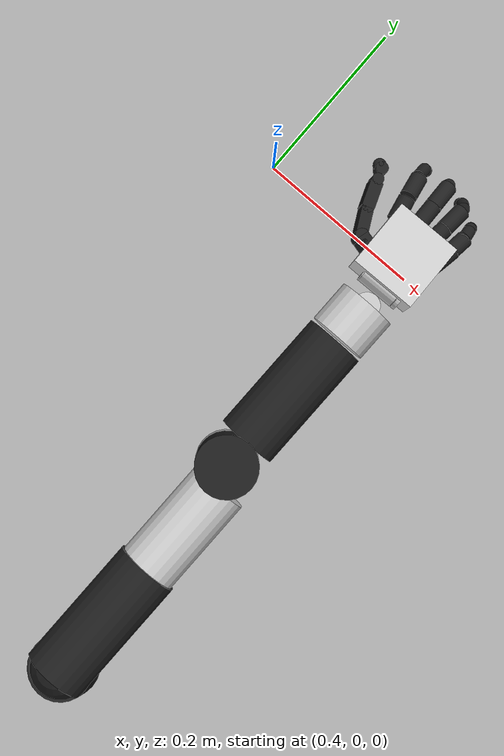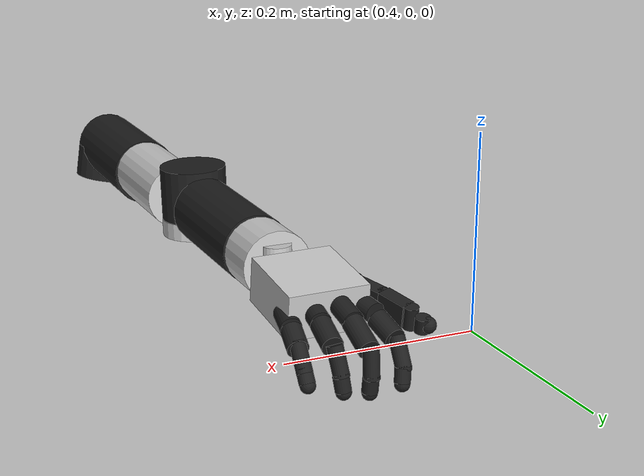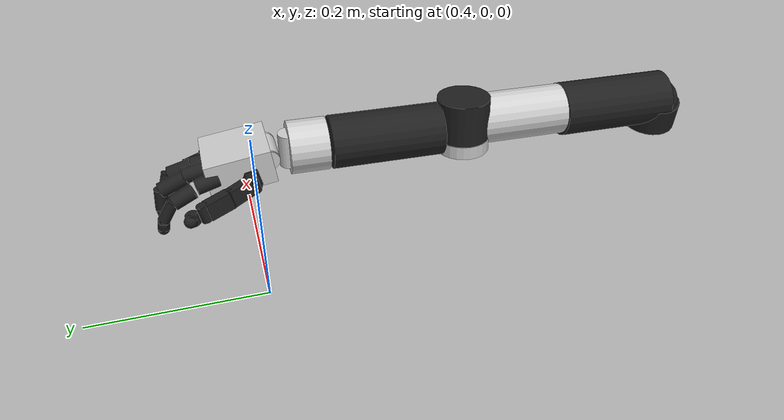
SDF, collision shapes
<sdf version="1.6">
 <model name="mpl_right_arm_grasping">
  <link name="shoulder">
   <pose>0.584765 0.007244 0.057603 -0.012801 0.145459 -1.58337</pose>
   <inertial>
    <pose>0.000536 0.002002 0.03328 0 -0 0</pose>
    <mass>0.0363799</mass>
    <inertia>
     <ixx>3.73005e-05</ixx>
     <ixy>5.68571e-07</ixy>
     <ixz>-7.59543e-07</ixz>
     <iyy>2.60558e-05</iyy>
     <iyz>-9.15512e-07</iyz>
     <izz>3.86186e-05</izz>
    </inertia>
   </inertial>
   <collision name="collision">
    <pose>0 0 0.0345 0 -0 0</pose>
    <geometry><sphere><radius>0.03495</radius></sphere></geometry>
    <surface>
     <contact><ode><kp>100000</kp><kd>10</kd><max_vel>0.1</max_vel><min_depth>0.0015</min_depth></ode></contact>
    </surface>
   </collision>
   <collision name="collision_1">
    <pose>0 0 0.01892 0 -0 0</pose>
    <geometry><cylinder><radius>0.038</radius><length>0.03784</length></cylinder></geometry>
    <surface>
     <contact><ode><kp>100000</kp><kd>10</kd><max_vel>0.1</max_vel><min_depth>0.0015</min_depth></ode></contact>
    </surface>
   </collision>
   <visual name="visual">
    <geometry><mesh><uri>model://mpl_right_arm/meshes/shoulder.stl</uri><scale>1 1 1</scale></mesh></geometry>
    <material><script><name>Gazebo/FlatBlack</name><uri>__default__</uri></script></material>
   </visual>
  </link>
  <link name="humerus">
   <pose>0.585044 0.001658 0.08437 -0.012367 0.14546 -1.58337</pose>
   <inertial>
    <pose>-0.00523 -0.083481 0.010842 0 -0 0</pose>
    <mass>0.0857896</mass>
    <inertia>
     <ixx>0.000259543</ixx>
     <ixy>-4.20463e-06</ixy>
     <ixz>9.18286e-07</ixz>
     <iyy>0.000134353</iyy>
     <iyz>-1.37928e-05</iyz>
     <izz>0.000284981</izz>
    </inertia>
   </inertial>
   <collision name="collision">
    <pose>-0.00164 -0.07024 0.01366 1.5707 -0 0</pose>
    <geometry><cylinder><radius>0.037035</radius><length>0.15849</length></cylinder></geometry>
    <surface>
     <contact><ode><kp>100000</kp><kd>10</kd><max_vel>0.1</max_vel><min_depth>0.0015</min_depth></ode></contact>
    </surface>
   </collision>
   <visual name="visual">
    <geometry><mesh><uri>model://mpl_right_arm/meshes/humerus.stl</uri><scale>1 1 1</scale></mesh></geometry>
    <material><script><name>Gazebo/FlatBlack</name><uri>__default__</uri></script></material>
   </visual>
  </link>
  <link name="elbow">
   <pose>0.435163 0.002889 0.100189 -0.012198 -0.030725 -1.58114</pose>
   <inertial>
    <pose>0.001164 -0.074089 -0.007315 0 -0 0</pose>
    <mass>0.0351897</mass>
    <inertia>
     <ixx>0.000106583</ixx>
     <ixy>-5.90862e-06</ixy>
     <ixz>-2.34382e-06</ixz>
     <iyy>3.29639e-05</iyy>
     <iyz>1.56515e-05</iyz>
     <izz>0.000106705</izz>
    </inertia>
   </inertial>
   <collision name="collision">
    <pose>0 -0.05957 0.00147 1.5707 -0 0</pose>
    <geometry><cylinder><radius>0.03447</radius><length>0.11914</length></cylinder></geometry>
    <surface>
     <contact><ode><kp>100000</kp><kd>10</kd><max_vel>0.1</max_vel><min_depth>0.0015</min_depth></ode></contact>
    </surface>
   </collision>
   <collision name="collision_1">
    <pose>0.00997 -0.1445 -0.0245 0 -0 0</pose>
    <geometry><cylinder><radius>0.036</radius><length>0.018</length></cylinder></geometry>
    <surface>
     <contact><ode><kp>100000</kp><kd>10</kd><max_vel>0.1</max_vel><min_depth>0.0015</min_depth></ode></contact>
    </surface>
   </collision>
   <visual name="visual">
    <geometry><mesh><uri>model://mpl_right_arm/meshes/elbow.stl</uri><scale>1 1 1</scale></mesh></geometry>
    <material>
     <ambient>0.2 0.2 0.2 1</ambient>
     <diffuse>0.8 0.8 0.8 1</diffuse>
     <specular>0.9 0.9 0.9 1</specular>
    </material>
   </visual>
  </link>
  <link name="forearm">
   <pose>0.290477 -0.006024 0.086921 -0.01218 -0.030743 -1.58347</pose>
   <inertial>
    <pose>-0.000589 -0.073314 0.021553 0 -0 0</pose>
    <mass>0.0997005</mass>
    <inertia>
     <ixx>0.0004998</ixx>
     <ixy>-5.83136e-06</ixy>
     <ixz>3.56083e-07</ixz>
     <iyy>0.00010215</iyy>
     <iyz>3.76069e-05</iyz>
     <izz>0.000498862</izz>
    </inertia>
   </inertial>
   <collision name="collision">
    <pose>0 0 0.02855 0 -0 0</pose>
    <geometry><cylinder><radius>0.03567</radius><length>0.0571</length></cylinder></geometry>
    <surface>
     <contact><ode><kp>100000</kp><kd>10</kd><max_vel>0.1</max_vel><min_depth>0.0015</min_depth></ode></contact>
    </surface>
   </collision>
   <collision name="collision_1">
    <pose>0 -0.10745 0.016 1.5707 -0 0</pose>
    <geometry><cylinder><radius>0.035</radius><length>0.148</length></cylinder></geometry>
    <surface>
     <contact><ode><kp>100000</kp><kd>10</kd><max_vel>0.1</max_vel><min_depth>0.0015</min_depth></ode></contact>
    </surface>
   </collision>
   <visual name="visual">
    <geometry><mesh><uri>model://mpl_right_arm/meshes/forearm.stl</uri><scale>1 1 1</scale></mesh></geometry>
    <material><script><name>Gazebo/FlatBlack</name><uri>__default__</uri></script></material>
   </visual>
  </link>
  <link name="wristy">
   <pose>0.105273 -0.003149 0.105172 -0.012174 -0.005504 -1.58379</pose>
   <inertial>
    <pose>-7.1e-05 -0.021779 -0.000286 0 -0 0</pose>
    <mass>0.0272932</mass>
    <inertia>
     <ixx>1.77029e-05</ixx>
     <ixy>7.89061e-09</ixy>
     <ixz>4.33867e-09</ixz>
     <iyy>2.46772e-05</iyy>
     <iyz>1.77331e-07</iyz>
     <izz>1.7112e-05</izz>
    </inertia>
   </inertial>
   <collision name="collision">
    <pose>0 -0.025 0 1.5707 -0 0</pose>
    <geometry><cylinder><radius>0.03447</radius><length>0.05</length></cylinder></geometry>
    <surface>
     <contact><ode><kp>100000</kp><kd>10</kd><max_vel>0.1</max_vel><min_depth>0.0015</min_depth></ode></contact>
    </surface>
   </collision>
   <visual name="visual">
    <geometry><mesh><uri>model://mpl_right_arm/meshes/wristy.stl</uri><scale>1 1 1</scale></mesh></geometry>
    <material>
     <ambient>0.2 0.2 0.2 1</ambient>
     <diffuse>0.8 0.8 0.8 1</diffuse>
     <specular>0.9 0.9 0.9 1</specular>
    </material>
   </visual>
  </link>
  <link name="wristx">
   <pose>0.057662 -0.002484 0.107789 -0.012335 -0.005259 -1.55806</pose>
   <inertial>
    <pose>0.001392 -0.009752 -0.002527 0 -0 0</pose>
    <mass>0.010691</mass>
    <inertia>
     <ixx>3.27995e-06</ixx>
     <ixy>-1.50151e-07</ixy>
     <ixz>5.11904e-09</ixz>
     <iyy>4.22942e-06</iyy>
     <iyz>-4.20007e-08</iyz>
     <izz>5.04229e-06</izz>
    </inertia>
   </inertial>
   <collision name="collision">
    <pose>0 0 -0.00314 0 -0 0</pose>
    <geometry><cylinder><radius>0.01473</radius><length>0.04478</length></cylinder></geometry>
    <surface>
     <contact><ode><kp>100000</kp><kd>10</kd><max_vel>0.1</max_vel><min_depth>0.0015</min_depth></ode></contact>
    </surface>
   </collision>
   <collision name="collision_1">
    <pose>0.0236 -0.02969 -0.0024 0 1.5707 0</pose>
    <geometry><cylinder><radius>0.013175</radius><length>0.005</length></cylinder></geometry>
    <surface>
     <contact><ode><kp>100000</kp><kd>10</kd><max_vel>0.1</max_vel><min_depth>0.0015</min_depth></ode></contact>
    </surface>
   </collision>
   <collision name="collision_2">
    <pose>-0.0236 -0.02969 -0.0024 0 1.5707 0</pose>
    <geometry><cylinder><radius>0.013175</radius><length>0.005</length></cylinder></geometry>
    <surface>
     <contact><ode><kp>100000</kp><kd>10</kd><max_vel>0.1</max_vel><min_depth>0.0015</min_depth></ode></contact>
    </surface>
   </collision>
   <visual name="visual">
    <geometry><mesh><uri>model://mpl_right_arm/meshes/wristx.stl</uri><scale>1 1 1</scale></mesh></geometry>
    <material>
     <ambient>0.2 0.2 0.2 1</ambient>
     <diffuse>0.8 0.8 0.8 1</diffuse>
     <specular>0.9 0.9 0.9 1</specular>
    </material>
   </visual>
  </link>
  <link name="wristz">
   <pose>0.027641 -0.003061 0.106066 0.127694 -0.00499 -1.5579</pose>
   <inertial>
    <pose>0.003682 -0.035876 0.002659 0 -0 0</pose>
    <mass>0.125889</mass>
    <inertia>
     <ixx>8.18077e-05</ixx>
     <ixy>-9.44149e-06</ixy>
     <ixz>3.88366e-06</ixz>
     <iyy>9.81482e-05</iyy>
     <iyz>-4.84151e-08</iyz>
     <izz>0.000131783</izz>
    </inertia>
   </inertial>
   <collision name="collision">
    <pose>0.00207 -0.00047 0.00046 1.5707 0 1.5707</pose>
    <geometry><cylinder><radius>0.01411</radius><length>0.04482</length></cylinder></geometry>
    <surface>
     <contact><ode><kp>100000</kp><kd>10</kd><max_vel>0.1</max_vel><min_depth>0.0015</min_depth></ode></contact>
    </surface>
   </collision>
   <collision name="collision_palm">
    <pose>0.002 -0.03739 0 0 -0 0</pose>
    <geometry><box><size>0.07928 0.08316 0.04402</size></box></geometry>
    <surface>
     <contact><ode><kp>100000</kp><kd>100</kd><max_vel>0.1</max_vel><min_depth>0.0015</min_depth></ode></contact>
    </surface>
   </collision>
   <visual name="visual">
    <geometry><mesh><uri>model://mpl_right_arm/meshes/wristz.stl</uri><scale>1 1 1</scale></mesh></geometry>
    <material>
     <ambient>0.2 0.2 0.2 1</ambient>
     <diffuse>0.8 0.8 0.8 1</diffuse>
     <specular>0.9 0.9 0.9 1</specular>
    </material>
   </visual>
   <visual name="visual_palm">
    <pose>0.025625 0 0 0 -0 0</pose>
    <geometry><mesh><uri>model://mpl_right_arm/meshes/palm.stl</uri><scale>1 1 1</scale></mesh></geometry>
    <material><script><name>Gazebo/FlatBlack</name><uri>__default__</uri></script></material>
   </visual>
  </link>
  <link name="index0">
   <pose>-0.037289 -0.039427 0.098865 0.159732 0.140878 -1.34498</pose>
   <inertial>
    <pose>-0.000143 -0.005485 0.000206 0 -0 0</pose>
    <mass>0.00295579</mass>
    <inertia>
     <ixx>4.22375e-07</ixx>
     <ixy>4.23313e-09</ixy>
     <ixz>5.00708e-10</ixz>
     <iyy>1.94048e-07</iyy>
     <iyz>-4.58697e-09</iyz>
     <izz>4.02188e-07</izz>
    </inertia>
   </inertial>
   <collision name="collision">
    <pose>0 -0.01339 0 1.5707 -0 0</pose>
    <geometry><cylinder><length>0.028</length><radius>0.01</radius></cylinder></geometry>
    <surface>
     <contact><ode><kp>100000</kp><kd>10</kd><max_vel>0.1</max_vel><min_depth>0.0015</min_depth></ode></contact>
    </surface>
   </collision>
   <visual name="visual">
    <geometry><mesh><uri>model://mpl_right_arm/meshes/index0.stl</uri><scale>1 1 1</scale></mesh></geometry>
    <material><script><name>Gazebo/FlatBlack</name><uri>__default__</uri></script></material>
   </visual>
  </link>
  <link name="index1">
   <pose>-0.054685 -0.043079 0.096029 0.381898 0.140987 -1.34489</pose>
   <inertial>
    <pose>0.000406 -0.021313 0.000656 0 -0 0</pose>
    <mass>0.00478235</mass>
    <inertia>
     <ixx>8.18593e-07</ixx>
     <ixy>-1.2874e-09</ixy>
     <ixz>1.78664e-10</ixz>
     <iyy>3.06547e-07</iyy>
     <iyz>-1.18998e-08</iyz>
     <izz>7.95406e-07</izz>
    </inertia>
   </inertial>
   <collision name="collision">
    <pose>0 -0.02782 0 1.5707 -0 0</pose>
    <geometry><cylinder><radius>0.01</radius><length>0.02781</length></cylinder></geometry>
    <surface>
     <contact><ode><kp>100000</kp><kd>10</kd><max_vel>0.1</max_vel><min_depth>0.0015</min_depth></ode></contact>
    </surface>
   </collision>
   <visual name="visual">
    <geometry><mesh><uri>model://mpl_right_arm/meshes/index1.stl</uri><scale>1 1 1</scale></mesh></geometry>
    <material><script><name>Gazebo/FlatBlack</name><uri>__default__</uri></script></material>
   </visual>
  </link>
  <link name="index2">
   <pose>-0.094464 -0.051056 0.080287 1.03949 0.141098 -1.34479</pose>
   <inertial>
    <pose>-0.000841 -0.012689 0.000573 0 -0 0</pose>
    <mass>0.00344764</mass>
    <inertia>
     <ixx>3.63785e-07</ixx>
     <ixy>-6.41791e-09</ixy>
     <ixz>7.97765e-10</ixz>
     <iyy>1.07105e-07</iyy>
     <iyz>2.03273e-08</iyz>
     <izz>3.57435e-07</izz>
    </inertia>
   </inertial>
   <collision name="collision">
    <pose>0 -0.01152 0 1.5707 -0 0</pose>
    <geometry><cylinder><length>0.029</length><radius>0.0075</radius></cylinder></geometry>
    <surface>
     <contact><ode><kp>100000</kp><kd>10</kd><max_vel>0.1</max_vel><min_depth>0.0015</min_depth></ode></contact>
    </surface>
   </collision>
   <collision name="collision_1">
    <pose>0 -0.02502 0 0 -0 0</pose>
    <geometry><sphere><radius>0.0075</radius></sphere></geometry>
    <surface>
     <contact><ode><kp>100000</kp><kd>10</kd><max_vel>0.1</max_vel><min_depth>0.0015</min_depth></ode></contact>
    </surface>
   </collision>
   <visual name="visual">
    <geometry><mesh><uri>model://mpl_right_arm/meshes/index2.stl</uri><scale>1 1 1</scale></mesh></geometry>
    <material><script><name>Gazebo/FlatBlack</name><uri>__default__</uri></script></material>
   </visual>
  </link>
  <link name="index3">
   <pose>-0.107368 -0.050329 0.059465 1.4387 0.14104 -1.34478</pose>
   <inertial>
    <pose>4.3e-05 -0.012532 0.000903 0 -0 0</pose>
    <mass>0.00274415</mass>
    <inertia>
     <ixx>1.09202e-07</ixx>
     <ixy>-3.99165e-12</ixy>
     <ixz>-5.84792e-12</ixz>
     <iyy>7.79728e-08</iyy>
     <iyz>2.77966e-09</iyz>
     <izz>1.19449e-07</izz>
    </inertia>
   </inertial>
   <collision name="collision">
    <pose>0 -0.00688 0.0001 1.5707 -0 0</pose>
    <geometry><cylinder><length>0.01376</length><radius>0.0074</radius></cylinder></geometry>
    <surface>
     <contact><ode><kp>100000</kp><kd>10</kd><max_vel>0.1</max_vel><min_depth>0.0015</min_depth></ode></contact>
    </surface>
   </collision>
   <collision name="collision_1">
    <pose>0 -0.015 0.0001 0 -0 0</pose>
    <geometry><sphere><radius>0.0072</radius></sphere></geometry>
    <surface>
     <contact><ode><kp>100000</kp><kd>10</kd><max_vel>0.1</max_vel><min_depth>0.0015</min_depth></ode></contact>
    </surface>
   </collision>
   <visual name="visual">
    <geometry><mesh><uri>model://mpl_right_arm/meshes/index3.stl</uri><scale>1 1 1</scale></mesh></geometry>
    <material><script><name>Gazebo/FlatBlack</name><uri>__default__</uri></script></material>
   </visual>
  </link>
  <link name="middle0">
   <pose>-0.050148 -0.0169 0.10161 0.215164 -0.004984 -1.55943</pose>
   <inertial>
    <pose>-0.000143 -0.005485 0.000206 0 -0 0</pose>
    <mass>0.00295579</mass>
    <inertia>
     <ixx>4.22374e-07</ixx>
     <ixy>4.23312e-09</ixy>
     <ixz>5.00706e-10</ixz>
     <iyy>1.94048e-07</iyy>
     <iyz>-4.58725e-09</iyz>
     <izz>4.02189e-07</izz>
    </inertia>
   </inertial>
   <collision name="collision">
    <pose>0 -0.01339 0 1.5707 -0 0</pose>
    <geometry><cylinder><length>0.028</length><radius>0.01</radius></cylinder></geometry>
    <surface>
     <contact><ode><kp>100000</kp><kd>10</kd><max_vel>0.1</max_vel><min_depth>0.0015</min_depth></ode></contact>
    </surface>
   </collision>
   <visual name="visual">
    <geometry><mesh><uri>model://mpl_right_arm/meshes/middle0.stl</uri><scale>1 1 1</scale></mesh></geometry>
    <material><script><name>Gazebo/FlatBlack</name><uri>__default__</uri></script></material>
   </visual>
  </link>
  <link name="middle1">
   <pose>-0.067733 -0.017179 0.097769 0.417208 -0.005092 -1.55955</pose>
   <inertial>
    <pose>0.000406 -0.021313 0.000656 0 -0 0</pose>
    <mass>0.00478229</mass>
    <inertia>
     <ixx>8.1859e-07</ixx>
     <ixy>-1.28827e-09</ixy>
     <ixz>1.7867e-10</ixz>
     <iyy>3.06545e-07</iyy>
     <iyz>-1.19001e-08</iyz>
     <izz>7.95403e-07</izz>
    </inertia>
   </inertial>
   <collision name="collision">
    <pose>0 -0.025 0 1.5707 -0 0</pose>
    <geometry><cylinder><radius>0.01</radius><length>0.03459</length></cylinder></geometry>
    <surface>
     <contact><ode><kp>100000</kp><kd>10</kd><max_vel>0.1</max_vel><min_depth>0.0015</min_depth></ode></contact>
    </surface>
   </collision>
   <visual name="visual">
    <geometry><mesh><uri>model://mpl_right_arm/meshes/middle1.stl</uri><scale>1 1 1</scale></mesh></geometry>
    <material><script><name>Gazebo/FlatBlack</name><uri>__default__</uri></script></material>
   </visual>
  </link>
  <link name="middle2">
   <pose>-0.107688 -0.018802 0.080605 1.4876 -0.005084 -1.5596</pose>
   <inertial>
    <pose>-0.000841 -0.012689 0.000573 0 -0 0</pose>
    <mass>0.00344765</mass>
    <inertia>
     <ixx>3.63785e-07</ixx>
     <ixy>-6.41794e-09</ixy>
     <ixz>7.97197e-10</ixz>
     <iyy>1.07106e-07</iyy>
     <iyz>2.03275e-08</iyz>
     <izz>3.57435e-07</izz>
    </inertia>
   </inertial>
   <collision name="collision">
    <pose>0 -0.01152 0 1.5707 -0 0</pose>
    <geometry><cylinder><length>0.029</length><radius>0.0075</radius></cylinder></geometry>
    <surface>
     <contact><ode><kp>100000</kp><kd>10</kd><max_vel>0.1</max_vel><min_depth>0.0015</min_depth></ode></contact>
    </surface>
   </collision>
   <collision name="collision_1">
    <pose>0 -0.02302 0 0 -0 0</pose>
    <geometry><sphere><radius>0.0075</radius></sphere></geometry>
    <surface>
     <contact><ode><kp>100000</kp><kd>10</kd><max_vel>0.1</max_vel><min_depth>0.0015</min_depth></ode></contact>
    </surface>
   </collision>
   <visual name="visual">
    <geometry><mesh><uri>model://mpl_right_arm/meshes/middle2.stl</uri><scale>1 1 1</scale></mesh></geometry>
    <material><script><name>Gazebo/FlatBlack</name><uri>__default__</uri></script></material>
   </visual>
  </link>
  <link name="middle3">
   <pose>-0.109729 -0.018314 0.056187 1.72008 -0.00503 -1.55959</pose>
   <inertial>
    <pose>4.3e-05 -0.012532 0.000903 0 -0 0</pose>
    <mass>0.00274417</mass>
    <inertia>
     <ixx>1.09202e-07</ixx>
     <ixy>-3.78001e-12</ixy>
     <ixz>-5.35395e-12</ixz>
     <iyy>7.79738e-08</iyy>
     <iyz>2.77969e-09</iyz>
     <izz>1.1945e-07</izz>
    </inertia>
   </inertial>
   <collision name="collision">
    <pose>0 -0.00688 0.0001 1.5707 -0 0</pose>
    <geometry><cylinder><length>0.01376</length><radius>0.0074</radius></cylinder></geometry>
    <surface>
     <contact><ode><kp>100000</kp><kd>10</kd><max_vel>0.1</max_vel><min_depth>0.0015</min_depth></ode></contact>
    </surface>
   </collision>
   <collision name="collision_1">
    <pose>0 -0.015 0.0001 0 -0 0</pose>
    <geometry><sphere><radius>0.0072</radius></sphere></geometry>
    <surface>
     <contact><ode><kp>100000</kp><kd>10</kd><max_vel>0.1</max_vel><min_depth>0.0015</min_depth></ode></contact>
    </surface>
   </collision>
   <visual name="visual">
    <geometry><mesh><uri>model://mpl_right_arm/meshes/middle3.stl</uri><scale>1 1 1</scale></mesh></geometry>
    <material><script><name>Gazebo/FlatBlack</name><uri>__default__</uri></script></material>
   </visual>
  </link>
  <link name="pinky0">
   <pose>-0.026981 0.026793 0.093265 0.161844 -0.149858 -1.77637</pose>
   <inertial>
    <pose>-0.000143 -0.005385 0.000206 0 -0 0</pose>
    <mass>0.00295579</mass>
    <inertia>
     <ixx>4.22375e-07</ixx>
     <ixy>4.23309e-09</ixy>
     <ixz>5.0054e-10</ixz>
     <iyy>1.94048e-07</iyy>
     <iyz>-4.58693e-09</iyz>
     <izz>4.02189e-07</izz>
    </inertia>
   </inertial>
   <collision name="collision">
    <pose>0 -0.01339 0 1.5707 -0 0</pose>
    <geometry><cylinder><length>0.028</length><radius>0.01</radius></cylinder></geometry>
    <surface>
     <contact><ode><kp>100000</kp><kd>10</kd><max_vel>0.1</max_vel><min_depth>0.0015</min_depth></ode></contact>
    </surface>
   </collision>
   <visual name="visual">
    <geometry><mesh><uri>model://mpl_right_arm/meshes/pinky0.stl</uri><scale>1 1 1</scale></mesh></geometry>
    <material><script><name>Gazebo/FlatBlack</name><uri>__default__</uri></script></material>
   </visual>
  </link>
  <link name="pinky1">
   <pose>-0.044374 0.02992 0.090422 0.411933 -0.150007 -1.7764</pose>
   <inertial>
    <pose>0.000459 -0.016048 0.000925 0 -0 0</pose>
    <mass>0.0034099</mass>
    <inertia>
     <ixx>4.03282e-07</ixx>
     <ixy>-1.80186e-09</ixy>
     <ixz>-1.42049e-09</ixz>
     <iyy>2.20449e-07</iyy>
     <iyz>-9.60174e-09</iyz>
     <izz>3.83588e-07</izz>
    </inertia>
   </inertial>
   <collision name="collision">
    <pose>0 -0.02082 0 1.5707 -0 0</pose>
    <geometry><cylinder><radius>0.01</radius><length>0.02381</length></cylinder></geometry>
    <surface>
     <contact><ode><kp>100000</kp><kd>10</kd><max_vel>0.1</max_vel><min_depth>0.0015</min_depth></ode></contact>
    </surface>
   </collision>
   <visual name="visual">
    <geometry><mesh><uri>model://mpl_right_arm/meshes/pinky1.stl</uri><scale>1 1 1</scale></mesh></geometry>
    <material><script><name>Gazebo/FlatBlack</name><uri>__default__</uri></script></material>
   </visual>
  </link>
  <link name="pinky2">
   <pose>-0.074678 0.03371 0.077897 1.00604 -0.150166 -1.77645</pose>
   <inertial>
    <pose>-0.000271 -0.009146 0.000738 0 -0 0</pose>
    <mass>0.00250622</mass>
    <inertia>
     <ixx>1.78939e-07</ixx>
     <ixy>-3.88097e-09</ixy>
     <ixz>3.24897e-10</ixz>
     <iyy>7.59883e-08</iyy>
     <iyz>1.17825e-08</iyz>
     <izz>1.74551e-07</izz>
    </inertia>
   </inertial>
   <collision name="collision">
    <pose>0 -0.0076 0 1.5707 -0 0</pose>
    <geometry><cylinder><length>0.029</length><radius>0.0075</radius></cylinder></geometry>
    <surface>
     <contact><ode><kp>100000</kp><kd>10</kd><max_vel>0.1</max_vel><min_depth>0.0015</min_depth></ode></contact>
    </surface>
   </collision>
   <visual name="visual">
    <geometry><mesh><uri>model://mpl_right_arm/meshes/pinky2.stl</uri><scale>1 1 1</scale></mesh></geometry>
    <material><script><name>Gazebo/FlatBlack</name><uri>__default__</uri></script></material>
   </visual>
  </link>
  <link name="pinky3">
   <pose>-0.084288 0.033504 0.063273 1.02091 -0.150144 -1.77653</pose>
   <inertial>
    <pose>3.9e-05 -0.012505 0.000912 0 -0 0</pose>
    <mass>0.00273265</mass>
    <inertia>
     <ixx>1.08629e-07</ixx>
     <ixy>2.84178e-11</ixy>
     <ixz>1.88869e-11</ixz>
     <iyy>7.78965e-08</iyy>
     <iyz>2.64344e-09</iyz>
     <izz>1.18971e-07</izz>
    </inertia>
   </inertial>
   <collision name="collision">
    <pose>0 -0.00688 0.0001 1.5707 -0 0</pose>
    <geometry><cylinder><length>0.01376</length><radius>0.0074</radius></cylinder></geometry>
    <surface>
     <contact><ode><kp>100000</kp><kd>10</kd><max_vel>0.1</max_vel><min_depth>0.0015</min_depth></ode></contact>
    </surface>
   </collision>
   <collision name="collision_1">
    <pose>0 -0.015 0.0001 0 -0 0</pose>
    <geometry><sphere><radius>0.0072</radius></sphere></geometry>
    <surface>
     <contact><ode><kp>100000</kp><kd>10</kd><max_vel>0.1</max_vel><min_depth>0.0015</min_depth></ode></contact>
    </surface>
   </collision>
   <visual name="visual">
    <geometry><mesh><uri>model://mpl_right_arm/meshes/pinky3.stl</uri><scale>1 1 1</scale></mesh></geometry>
    <material><script><name>Gazebo/FlatBlack</name><uri>__default__</uri></script></material>
   </visual>
  </link>
  <link name="ring0">
   <pose>-0.03883 0.005914 0.099022 0.151462 -0.160607 -1.70847</pose>
   <inertial>
    <pose>-0.000143 -0.005485 0.000206 0 -0 0</pose>
    <mass>0.00295579</mass>
    <inertia>
     <ixx>4.22375e-07</ixx>
     <ixy>4.23309e-09</ixy>
     <ixz>5.00535e-10</ixz>
     <iyy>1.94048e-07</iyy>
     <iyz>-4.58693e-09</iyz>
     <izz>4.02189e-07</izz>
    </inertia>
   </inertial>
   <collision name="collision">
    <pose>0 -0.01339 0 1.5707 -0 0</pose>
    <geometry><cylinder><length>0.028</length><radius>0.01</radius></cylinder></geometry>
    <surface>
     <contact><ode><kp>100000</kp><kd>10</kd><max_vel>0.1</max_vel><min_depth>0.0015</min_depth></ode></contact>
    </surface>
   </collision>
   <visual name="visual">
    <geometry><mesh><uri>model://mpl_right_arm/meshes/ring0.stl</uri><scale>1 1 1</scale></mesh></geometry>
    <material><script><name>Gazebo/FlatBlack</name><uri>__default__</uri></script></material>
   </visual>
  </link>
  <link name="ring1">
   <pose>-0.056524 0.007869 0.096351 0.310356 -0.160758 -1.70862</pose>
   <inertial>
    <pose>0.000406 -0.021313 0.000656 0 -0 0</pose>
    <mass>0.00478232</mass>
    <inertia>
     <ixx>8.18592e-07</ixx>
     <ixy>-1.28783e-09</ixy>
     <ixz>1.78814e-10</ixz>
     <iyy>3.06546e-07</iyy>
     <iyz>-1.19e-08</iyz>
     <izz>7.95405e-07</izz>
    </inertia>
   </inertial>
   <collision name="collision">
    <pose>0 -0.02505 0 1.5707 -0 0</pose>
    <geometry><cylinder><radius>0.01</radius><length>0.03095</length></cylinder></geometry>
    <surface>
     <contact><ode><kp>100000</kp><kd>10</kd><max_vel>0.1</max_vel><min_depth>0.0015</min_depth></ode></contact>
    </surface>
   </collision>
   <visual name="visual">
    <geometry><mesh><uri>model://mpl_right_arm/meshes/ring1.stl</uri><scale>1 1 1</scale></mesh></geometry>
    <material><script><name>Gazebo/FlatBlack</name><uri>__default__</uri></script></material>
   </visual>
  </link>
  <link name="ring2">
   <pose>-0.098133 0.010489 0.083881 1.30048 -0.160795 -1.70871</pose>
   <inertial>
    <pose>-0.000842 -0.012689 0.000573 0 -0 0</pose>
    <mass>0.00344767</mass>
    <inertia>
     <ixx>3.63785e-07</ixx>
     <ixy>-6.41744e-09</ixy>
     <ixz>7.98585e-10</ixz>
     <iyy>1.07107e-07</iyy>
     <iyz>2.03271e-08</iyz>
     <izz>3.57437e-07</izz>
    </inertia>
   </inertial>
   <collision name="collision">
    <pose>0 -0.01152 0 1.5707 -0 0</pose>
    <geometry><cylinder><length>0.029</length><radius>0.0075</radius></cylinder></geometry>
    <surface>
     <contact><ode><kp>100000</kp><kd>10</kd><max_vel>0.1</max_vel><min_depth>0.0015</min_depth></ode></contact>
    </surface>
   </collision>
   <collision name="collision_1">
    <pose>0 -0.02302 0 0 -0 0</pose>
    <geometry><sphere><radius>0.0075</radius></sphere></geometry>
    <surface>
     <contact><ode><kp>100000</kp><kd>10</kd><max_vel>0.1</max_vel><min_depth>0.0015</min_depth></ode></contact>
    </surface>
   </collision>
   <visual name="visual">
    <geometry><mesh><uri>model://mpl_right_arm/meshes/ring2.stl</uri><scale>1 1 1</scale></mesh></geometry>
    <material><script><name>Gazebo/FlatBlack</name><uri>__default__</uri></script></material>
   </visual>
  </link>
  <link name="ring3">
   <pose>-0.105046 0.008264 0.060474 1.50094 -0.160723 -1.70873</pose>
   <inertial>
    <pose>4.3e-05 -0.012532 0.000903 0 -0 0</pose>
    <mass>0.00274416</mass>
    <inertia>
     <ixx>1.09202e-07</ixx>
     <ixy>-3.99392e-12</ixy>
     <ixz>-5.71287e-12</ixz>
     <iyy>7.79732e-08</iyy>
     <iyz>2.77976e-09</iyz>
     <izz>1.1945e-07</izz>
    </inertia>
   </inertial>
   <collision name="collision">
    <pose>0 -0.00688 0.0001 1.5707 -0 0</pose>
    <geometry><cylinder><length>0.01376</length><radius>0.0074</radius></cylinder></geometry>
    <surface>
     <contact><ode><kp>100000</kp><kd>10</kd><max_vel>0.1</max_vel><min_depth>0.0015</min_depth></ode></contact>
    </surface>
   </collision>
   <collision name="collision_1">
    <pose>0 -0.015 0.0001 0 -0 0</pose>
    <geometry><sphere><radius>0.0072</radius></sphere></geometry>
    <surface>
     <contact><ode><kp>100000</kp><kd>10</kd><max_vel>0.1</max_vel><min_depth>0.0015</min_depth></ode></contact>
    </surface>
   </collision>
   <visual name="visual">
    <geometry><mesh><uri>model://mpl_right_arm/meshes/ring3.stl</uri><scale>1 1 1</scale></mesh></geometry>
    <material><script><name>Gazebo/FlatBlack</name><uri>__default__</uri></script></material>
   </visual>
  </link>
  <link name="thumb0">
   <pose>0.008836 -0.037353 0.0936 0.212705 0.019993 -1.82037</pose>
   <inertial>
    <pose>0.008633 -0.000157 -0.000946 0 -0 0</pose>
    <mass>0.00336696</mass>
    <inertia>
     <ixx>2.44266e-07</ixx>
     <ixy>-1.56849e-08</ixy>
     <ixz>4.05807e-08</ixz>
     <iyy>4.49559e-07</iyy>
     <iyz>3.27736e-09</iyz>
     <izz>4.40718e-07</izz>
    </inertia>
   </inertial>
   <collision name="collision">
    <pose>0.02 -0.001 0.0015 0 -0 0</pose>
    <geometry><cylinder><length>0.023</length><radius>0.008221</radius></cylinder></geometry>
    <surface>
     <contact><ode><kp>100000</kp><kd>10</kd><max_vel>0.1</max_vel><min_depth>0.0015</min_depth></ode></contact>
    </surface>
   </collision>
   <collision name="collision_1">
    <pose>0.01 -0.001 0.0015 0 -0 0</pose>
    <geometry><box><size>0.0202 0.0155 0.023</size></box></geometry>
    <surface>
     <contact><ode><kp>100000</kp><kd>10</kd><max_vel>0.1</max_vel><min_depth>0.0015</min_depth></ode></contact>
    </surface>
   </collision>
   <visual name="visual">
    <geometry><mesh><uri>model://mpl_right_arm/meshes/thumb0.stl</uri><scale>1 1 1</scale></mesh></geometry>
    <material><script><name>Gazebo/FlatBlack</name><uri>__default__</uri></script></material>
   </visual>
  </link>
  <link name="thumb1">
   <pose>0.00257 -0.057365 0.094434 0.124389 0.172045 -2.67086</pose>
   <inertial>
    <pose>0.019024 0.000361 -0.000187 0 -0 0</pose>
    <mass>0.00596213</mass>
    <inertia>
     <ixx>5.36423e-07</ixx>
     <ixy>-7.9696e-09</ixy>
     <ixz>-3.66761e-08</ixz>
     <iyy>9.87852e-07</iyy>
     <iyz>-1.23551e-09</iyz>
     <izz>9.4184e-07</izz>
    </inertia>
   </inertial>
   <collision name="collision">
    <pose>-0.00056 0 -0.00025 0 -0 0</pose>
    <geometry><cylinder><length>0.0188</length><radius>0.00688</radius></cylinder></geometry>
    <surface>
     <contact><ode><kp>100000</kp><kd>10</kd><max_vel>0.1</max_vel><min_depth>0.0015</min_depth></ode></contact>
    </surface>
   </collision>
   <collision name="collision_1">
    <pose>0.03381 0 0 0 -0 0</pose>
    <geometry><cylinder><length>0.02176</length><radius>0.00688</radius></cylinder></geometry>
    <surface>
     <contact><ode><kp>100000</kp><kd>10</kd><max_vel>0.1</max_vel><min_depth>0.0015</min_depth></ode></contact>
    </surface>
   </collision>
   <collision name="collision_2">
    <pose>0.01613 0 0 0 -0 0</pose>
    <geometry><box><size>0.03273 0.01376 0.02176</size></box></geometry>
    <surface>
     <contact><ode><kp>100000</kp><kd>10</kd><max_vel>0.1</max_vel><min_depth>0.0015</min_depth></ode></contact>
    </surface>
   </collision>
   <visual name="visual">
    <geometry><mesh><uri>model://mpl_right_arm/meshes/thumb1.stl</uri><scale>1 1 1</scale></mesh></geometry>
    <material><script><name>Gazebo/FlatBlack</name><uri>__default__</uri></script></material>
   </visual>
  </link>
  <link name="thumb2">
   <pose>-0.026697 -0.072368 0.08798 0.103611 0.184809 -2.78701</pose>
   <inertial>
    <pose>0.018897 0.000376 0.000654 0 -0 0</pose>
    <mass>0.00599792</mass>
    <inertia>
     <ixx>5.17385e-07</ixx>
     <ixy>-1.08936e-08</ixy>
     <ixz>-3.49348e-08</ixz>
     <iyy>9.9639e-07</iyy>
     <iyz>5.15558e-10</iyz>
     <izz>9.6228e-07</izz>
    </inertia>
   </inertial>
   <collision name="collision">
    <pose>0.03415 0 0.001 0 -0 0</pose>
    <geometry><cylinder><radius>0.00679</radius><length>0.02236</length></cylinder></geometry>
    <surface>
     <contact><ode><kp>100000</kp><kd>10</kd><max_vel>0.1</max_vel><min_depth>0.0015</min_depth></ode></contact>
    </surface>
   </collision>
   <collision name="collision_1">
    <pose>0.01493 0 0.001 0 -0 0</pose>
    <geometry><box><size>0.03095 0.015 0.02236</size></box></geometry>
    <surface>
     <contact><ode><kp>100000</kp><kd>10</kd><max_vel>0.1</max_vel><min_depth>0.0015</min_depth></ode></contact>
    </surface>
   </collision>
   <visual name="visual">
    <geometry><mesh><uri>model://mpl_right_arm/meshes/thumb2.stl</uri><scale>1 1 1</scale></mesh></geometry>
    <material><script><name>Gazebo/FlatBlack</name><uri>__default__</uri></script></material>
   </visual>
  </link>
  <link name="thumb3">
   <pose>-0.057827 -0.083791 0.082886 0.123949 0.171765 -2.67222</pose>
   <inertial>
    <pose>0.012344 -0.001455 0 0 -0 0</pose>
    <mass>0.00274415</mass>
    <inertia>
     <ixx>1.73184e-07</ixx>
     <ixy>0</ixy>
     <ixz>0</ixz>
     <iyy>3.66499e-07</iyy>
     <iyz>2.77966e-09</iyz>
     <izz>3.59291e-07</izz>
    </inertia>
   </inertial>
   <collision name="collision">
    <pose>0.01507 -0.00219 0.0001 0 -0 0</pose>
    <geometry><cylinder><length>0.01476</length><radius>0.0074</radius></cylinder></geometry>
    <surface>
     <contact><ode><kp>100000</kp><kd>10</kd><max_vel>0.1</max_vel><min_depth>0.0015</min_depth></ode></contact>
    </surface>
   </collision>
   <collision name="collision_1">
    <pose>0.0195 0 0 0 -0 0</pose>
    <geometry><sphere><radius>0.008</radius></sphere></geometry>
    <surface>
     <contact><ode><kp>100000</kp><kd>10</kd><max_vel>0.1</max_vel><min_depth>0.0015</min_depth></ode></contact>
    </surface>
   </collision>
   <visual name="visual">
    <geometry><mesh><uri>model://mpl_right_arm/meshes/thumb3.stl</uri><scale>1 1 1</scale></mesh></geometry>
    <material><script><name>Gazebo/FlatBlack</name><uri>__default__</uri></script></material>
   </visual>
  </link>
  <joint name="humerus" type="revolute">
   <child>humerus</child>
   <parent>shoulder</parent>
   <axis>
    <xyz>0.999933 -0.011537 0</xyz>
    <limit><lower>-3.14</lower><upper>0.345</upper><effort>10000</effort><velocity>0.5</velocity></limit>
    <dynamics>
     <damping>5</damping>
     <spring_reference>0</spring_reference>
     <spring_stiffness>0</spring_stiffness>
    </dynamics>
    <use_parent_model_frame>1</use_parent_model_frame>
   </axis>
   <physics>
    <provide_feedback>1</provide_feedback>
    <ode>
     <implicit_spring_damper>1</implicit_spring_damper>
     <cfm_damping>1</cfm_damping>
     <limit><cfm>0.01</cfm><erp>0</erp></limit>
    </ode>
   </physics>
  </joint>
  <joint name="elbow" type="revolute">
   <child>elbow</child>
   <parent>humerus</parent>
   <axis>
    <xyz>0.011537 0.999933 0</xyz>
    <limit><lower>-0.697</lower><upper>1.57</upper><effort>10000</effort><velocity>0.5</velocity></limit>
    <dynamics>
     <damping>5</damping>
     <spring_reference>0</spring_reference>
     <spring_stiffness>0</spring_stiffness>
    </dynamics>
    <use_parent_model_frame>1</use_parent_model_frame>
   </axis>
   <physics>
    <provide_feedback>1</provide_feedback>
    <ode>
     <implicit_spring_damper>1</implicit_spring_damper>
     <cfm_damping>1</cfm_damping>
     <limit><cfm>0.01</cfm><erp>0</erp></limit>
    </ode>
   </physics>
  </joint>
  <joint name="forearm" type="revolute">
   <child>forearm</child>
   <parent>elbow</parent>
   <axis>
    <xyz>0 0 1</xyz>
    <limit><lower>0</lower><upper>2.61</upper><effort>10000</effort><velocity>0.5</velocity></limit>
    <dynamics>
     <damping>5</damping>
     <spring_reference>0</spring_reference>
     <spring_stiffness>0</spring_stiffness>
    </dynamics>
    <use_parent_model_frame>1</use_parent_model_frame>
   </axis>
   <physics>
    <provide_feedback>1</provide_feedback>
    <ode>
     <implicit_spring_damper>1</implicit_spring_damper>
     <cfm_damping>1</cfm_damping>
     <limit><cfm>0.01</cfm><erp>0</erp></limit>
    </ode>
   </physics>
  </joint>
  <joint name="wristy" type="revolute">
   <child>wristy</child>
   <parent>forearm</parent>
   <axis>
    <xyz>0.011537 0.999933 0</xyz>
    <limit><lower>-1.57</lower><upper>1.57</upper><effort>10000</effort><velocity>0.5</velocity></limit>
    <dynamics>
     <damping>5</damping>
     <spring_reference>0</spring_reference>
     <spring_stiffness>0</spring_stiffness>
    </dynamics>
    <use_parent_model_frame>1</use_parent_model_frame>
   </axis>
   <physics>
    <provide_feedback>1</provide_feedback>
    <ode>
     <implicit_spring_damper>1</implicit_spring_damper>
     <cfm_damping>1</cfm_damping>
     <limit><cfm>0</cfm><erp>0.2</erp></limit>
    </ode>
   </physics>
  </joint>
  <joint name="wristx" type="revolute">
   <child>wristx</child>
   <parent>wristy</parent>
   <axis>
    <xyz>0 0 -1</xyz>
    <limit><lower>-0.261</lower><upper>0.785</upper><effort>10000</effort><velocity>0.5</velocity></limit>
    <dynamics>
     <damping>5</damping>
     <spring_reference>0</spring_reference>
     <spring_stiffness>0</spring_stiffness>
    </dynamics>
    <use_parent_model_frame>1</use_parent_model_frame>
   </axis>
   <physics>
    <provide_feedback>1</provide_feedback>
    <ode>
     <implicit_spring_damper>1</implicit_spring_damper>
     <cfm_damping>1</cfm_damping>
     <limit><cfm>0</cfm><erp>0.2</erp></limit>
    </ode>
   </physics>
  </joint>
  <joint name="wristz" type="revolute">
   <child>wristz</child>
   <parent>wristx</parent>
   <axis>
    <xyz>0.999933 -0.011537 0</xyz>
    <limit><lower>-1.04</lower><upper>1.04</upper><effort>10000</effort><velocity>0.5</velocity></limit>
    <dynamics>
     <damping>5</damping>
     <spring_reference>0</spring_reference>
     <spring_stiffness>0</spring_stiffness>
    </dynamics>
    <use_parent_model_frame>1</use_parent_model_frame>
   </axis>
   <physics>
    <provide_feedback>1</provide_feedback>
    <ode>
     <implicit_spring_damper>1</implicit_spring_damper>
     <cfm_damping>1</cfm_damping>
     <limit><cfm>0</cfm><erp>0.2</erp></limit>
    </ode>
   </physics>
  </joint>
  <joint name="index0" type="revolute">
   <child>index0</child>
   <parent>wristz</parent>
   <axis>
    <xyz>-0.173637 0.002003 -0.984808</xyz>
    <limit><lower>-0.345</lower><upper>0</upper><effort>10000</effort><velocity>0.5</velocity></limit>
    <dynamics>
     <damping>0.8</damping>
     <spring_reference>0</spring_reference>
     <spring_stiffness>0</spring_stiffness>
    </dynamics>
    <use_parent_model_frame>1</use_parent_model_frame>
   </axis>
   <physics>
    <provide_feedback>1</provide_feedback>
    <ode>
     <implicit_spring_damper>1</implicit_spring_damper>
     <cfm_damping>1</cfm_damping>
     <limit><cfm>0</cfm><erp>0.2</erp></limit>
    </ode>
   </physics>
  </joint>
  <joint name="index1" type="revolute">
   <child>index1</child>
   <parent>index0</parent>
   <axis>
    <xyz>0.984742 -0.011362 -0.173648</xyz>
    <limit><lower>-0.785</lower><upper>1.57</upper><effort>10000</effort><velocity>0.5</velocity></limit>
    <dynamics>
     <damping>0.8</damping>
     <spring_reference>0</spring_reference>
     <spring_stiffness>0</spring_stiffness>
    </dynamics>
    <use_parent_model_frame>1</use_parent_model_frame>
   </axis>
   <physics>
    <provide_feedback>1</provide_feedback>
    <ode>
     <implicit_spring_damper>1</implicit_spring_damper>
     <cfm_damping>1</cfm_damping>
     <limit><cfm>0</cfm><erp>0.2</erp></limit>
    </ode>
   </physics>
  </joint>
  <joint name="index2" type="revolute">
   <child>index2</child>
   <parent>index1</parent>
   <axis>
    <xyz>0.984742 -0.011362 -0.173648</xyz>
    <limit><lower>0</lower><upper>1.72</upper><effort>10000</effort><velocity>0.5</velocity></limit>
    <dynamics>
     <damping>0.8</damping>
     <spring_reference>0</spring_reference>
     <spring_stiffness>0</spring_stiffness>
    </dynamics>
    <use_parent_model_frame>1</use_parent_model_frame>
   </axis>
   <physics>
    <provide_feedback>1</provide_feedback>
    <ode>
     <implicit_spring_damper>1</implicit_spring_damper>
     <cfm_damping>1</cfm_damping>
     <limit><cfm>0</cfm><erp>0.2</erp></limit>
    </ode>
   </physics>
  </joint>
  <joint name="index3" type="revolute">
   <child>index3</child>
   <parent>index2</parent>
   <axis>
    <xyz>0.984742 -0.011362 -0.173648</xyz>
    <limit><lower>0</lower><upper>1.38</upper><effort>10000</effort><velocity>0.5</velocity></limit>
    <dynamics>
     <damping>0.8</damping>
     <spring_reference>0</spring_reference>
     <spring_stiffness>0</spring_stiffness>
    </dynamics>
    <use_parent_model_frame>1</use_parent_model_frame>
   </axis>
   <physics>
    <provide_feedback>1</provide_feedback>
    <ode>
     <implicit_spring_damper>1</implicit_spring_damper>
     <cfm_damping>1</cfm_damping>
     <limit><cfm>0</cfm><erp>0.2</erp></limit>
    </ode>
   </physics>
  </joint>
  <joint name="middle0" type="revolute">
   <child>middle0</child>
   <parent>wristz</parent>
   <axis>
    <xyz>0.001006 0.08715 -0.996195</xyz>
    <limit><lower>0</lower><upper>0</upper><effort>10000</effort><velocity>0.5</velocity></limit>
    <dynamics>
     <damping>0.8</damping>
     <spring_reference>0</spring_reference>
     <spring_stiffness>0</spring_stiffness>
    </dynamics>
    <use_parent_model_frame>1</use_parent_model_frame>
   </axis>
   <physics>
    <provide_feedback>1</provide_feedback>
    <ode>
     <implicit_spring_damper>1</implicit_spring_damper>
     <cfm_damping>1</cfm_damping>
     <limit><cfm>0</cfm><erp>0.2</erp></limit>
    </ode>
   </physics>
  </joint>
  <joint name="middle1" type="revolute">
   <child>middle1</child>
   <parent>middle0</parent>
   <axis>
    <xyz>0.999933 -0.011537 0</xyz>
    <limit><lower>-0.785</lower><upper>1.57</upper><effort>10000</effort><velocity>0.5</velocity></limit>
    <dynamics>
     <damping>0.8</damping>
     <spring_reference>0</spring_reference>
     <spring_stiffness>0</spring_stiffness>
    </dynamics>
    <use_parent_model_frame>1</use_parent_model_frame>
   </axis>
   <physics>
    <provide_feedback>1</provide_feedback>
    <ode>
     <implicit_spring_damper>1</implicit_spring_damper>
     <cfm_damping>1</cfm_damping>
     <limit><cfm>0</cfm><erp>0.2</erp></limit>
    </ode>
   </physics>
  </joint>
  <joint name="middle2" type="revolute">
   <child>middle2</child>
   <parent>middle1</parent>
   <axis>
    <xyz>0.999933 -0.011537 0</xyz>
    <limit><lower>0</lower><upper>1.73</upper><effort>10000</effort><velocity>0.5</velocity></limit>
    <dynamics>
     <damping>0.8</damping>
     <spring_reference>0</spring_reference>
     <spring_stiffness>0</spring_stiffness>
    </dynamics>
    <use_parent_model_frame>1</use_parent_model_frame>
   </axis>
   <physics>
    <provide_feedback>1</provide_feedback>
    <ode>
     <implicit_spring_damper>1</implicit_spring_damper>
     <cfm_damping>1</cfm_damping>
     <limit><cfm>0</cfm><erp>0.2</erp></limit>
    </ode>
   </physics>
  </joint>
  <joint name="middle3" type="revolute">
   <child>middle3</child>
   <parent>middle2</parent>
   <axis>
    <xyz>0.999933 -0.011537 0</xyz>
    <limit><lower>0</lower><upper>1.38</upper><effort>10000</effort><velocity>0.5</velocity></limit>
    <dynamics>
     <damping>0.8</damping>
     <spring_reference>0</spring_reference>
     <spring_stiffness>0</spring_stiffness>
    </dynamics>
    <use_parent_model_frame>1</use_parent_model_frame>
   </axis>
   <physics>
    <provide_feedback>1</provide_feedback>
    <ode>
     <implicit_spring_damper>1</implicit_spring_damper>
     <cfm_damping>1</cfm_damping>
     <limit><cfm>0</cfm><erp>0.2</erp></limit>
    </ode>
   </physics>
  </joint>
  <joint name="pinky0" type="revolute">
   <child>pinky0</child>
   <parent>wristz</parent>
   <axis>
    <xyz>0.173637 -0.002003 -0.984808</xyz>
    <limit><lower>0</lower><upper>0.345</upper><effort>10000</effort><velocity>0.5</velocity></limit>
    <dynamics>
     <damping>0.8</damping>
     <spring_reference>0</spring_reference>
     <spring_stiffness>0</spring_stiffness>
    </dynamics>
    <use_parent_model_frame>1</use_parent_model_frame>
   </axis>
   <physics>
    <provide_feedback>1</provide_feedback>
    <ode>
     <implicit_spring_damper>1</implicit_spring_damper>
     <cfm_damping>1</cfm_damping>
     <limit><cfm>0</cfm><erp>0.2</erp></limit>
    </ode>
   </physics>
  </joint>
  <joint name="pinky1" type="revolute">
   <child>pinky1</child>
   <parent>pinky0</parent>
   <axis>
    <xyz>0.984742 -0.011362 0.173648</xyz>
    <limit><lower>-0.785</lower><upper>1.57</upper><effort>10000</effort><velocity>0.5</velocity></limit>
    <dynamics>
     <damping>0.8</damping>
     <spring_reference>0</spring_reference>
     <spring_stiffness>0</spring_stiffness>
    </dynamics>
    <use_parent_model_frame>1</use_parent_model_frame>
   </axis>
   <physics>
    <provide_feedback>1</provide_feedback>
    <ode>
     <implicit_spring_damper>1</implicit_spring_damper>
     <cfm_damping>1</cfm_damping>
     <limit><cfm>0</cfm><erp>0.2</erp></limit>
    </ode>
   </physics>
  </joint>
  <joint name="pinky2" type="revolute">
   <child>pinky2</child>
   <parent>pinky1</parent>
   <axis>
    <xyz>0.984742 -0.011362 0.173648</xyz>
    <limit><lower>0</lower><upper>1.72</upper><effort>10000</effort><velocity>0.5</velocity></limit>
    <dynamics>
     <damping>0.8</damping>
     <spring_reference>0</spring_reference>
     <spring_stiffness>0</spring_stiffness>
    </dynamics>
    <use_parent_model_frame>1</use_parent_model_frame>
   </axis>
   <physics>
    <provide_feedback>1</provide_feedback>
    <ode>
     <implicit_spring_damper>1</implicit_spring_damper>
     <cfm_damping>1</cfm_damping>
     <limit><cfm>0</cfm><erp>0.2</erp></limit>
    </ode>
   </physics>
  </joint>
  <joint name="pinky3" type="revolute">
   <child>pinky3</child>
   <parent>pinky2</parent>
   <axis>
    <xyz>0.984742 -0.011362 0.173648</xyz>
    <limit><lower>0</lower><upper>1.38</upper><effort>10000</effort><velocity>0.5</velocity></limit>
    <dynamics>
     <damping>0.8</damping>
     <spring_reference>0</spring_reference>
     <spring_stiffness>0</spring_stiffness>
    </dynamics>
    <use_parent_model_frame>1</use_parent_model_frame>
   </axis>
   <physics>
    <provide_feedback>1</provide_feedback>
    <ode>
     <implicit_spring_damper>1</implicit_spring_damper>
     <cfm_damping>1</cfm_damping>
     <limit><cfm>0</cfm><erp>0.2</erp></limit>
    </ode>
   </physics>
  </joint>
  <joint name="ring0" type="revolute">
   <child>ring0</child>
   <parent>wristz</parent>
   <axis>
    <xyz>0.173637 -0.002003 -0.984808</xyz>
    <limit><lower>0</lower><upper>0.345</upper><effort>10000</effort><velocity>0.5</velocity></limit>
    <dynamics>
     <damping>0.8</damping>
     <spring_reference>0</spring_reference>
     <spring_stiffness>0</spring_stiffness>
    </dynamics>
    <use_parent_model_frame>1</use_parent_model_frame>
   </axis>
   <physics>
    <provide_feedback>1</provide_feedback>
    <ode>
     <implicit_spring_damper>1</implicit_spring_damper>
     <cfm_damping>1</cfm_damping>
     <limit><cfm>0</cfm><erp>0.2</erp></limit>
    </ode>
   </physics>
  </joint>
  <joint name="ring1" type="revolute">
   <child>ring1</child>
   <parent>ring0</parent>
   <axis>
    <xyz>0.984742 -0.011362 0.173648</xyz>
    <limit><lower>-0.785</lower><upper>1.57</upper><effort>10000</effort><velocity>0.5</velocity></limit>
    <dynamics>
     <damping>0.8</damping>
     <spring_reference>0</spring_reference>
     <spring_stiffness>0</spring_stiffness>
    </dynamics>
    <use_parent_model_frame>1</use_parent_model_frame>
   </axis>
   <physics>
    <provide_feedback>1</provide_feedback>
    <ode>
     <implicit_spring_damper>1</implicit_spring_damper>
     <cfm_damping>1</cfm_damping>
     <limit><cfm>0</cfm><erp>0.2</erp></limit>
    </ode>
   </physics>
  </joint>
  <joint name="ring2" type="revolute">
   <child>ring2</child>
   <parent>ring1</parent>
   <axis>
    <xyz>0.984742 -0.011362 0.173648</xyz>
    <limit><lower>0</lower><upper>1.72</upper><effort>10000</effort><velocity>0.5</velocity></limit>
    <dynamics>
     <damping>0.8</damping>
     <spring_reference>0</spring_reference>
     <spring_stiffness>0</spring_stiffness>
    </dynamics>
    <use_parent_model_frame>1</use_parent_model_frame>
   </axis>
   <physics>
    <provide_feedback>1</provide_feedback>
    <ode>
     <implicit_spring_damper>1</implicit_spring_damper>
     <cfm_damping>1</cfm_damping>
     <limit><cfm>0</cfm><erp>0.2</erp></limit>
    </ode>
   </physics>
  </joint>
  <joint name="ring3" type="revolute">
   <child>ring3</child>
   <parent>ring2</parent>
   <axis>
    <xyz>0.984742 -0.011362 0.173648</xyz>
    <limit><lower>0</lower><upper>1.38</upper><effort>10000</effort><velocity>0.5</velocity></limit>
    <dynamics>
     <damping>0.8</damping>
     <spring_reference>0</spring_reference>
     <spring_stiffness>0</spring_stiffness>
    </dynamics>
    <use_parent_model_frame>1</use_parent_model_frame>
   </axis>
   <physics>
    <provide_feedback>1</provide_feedback>
    <ode>
     <implicit_spring_damper>1</implicit_spring_damper>
     <cfm_damping>1</cfm_damping>
     <limit><cfm>0</cfm><erp>0.2</erp></limit>
    </ode>
   </physics>
  </joint>
  <joint name="thumb0" type="revolute">
   <child>thumb0</child>
   <parent>wristz</parent>
   <axis>
    <xyz>0.269769 0.958967 0.087224</xyz>
    <limit><lower>0</lower><upper>2.07</upper><effort>10000</effort><velocity>0.5</velocity></limit>
    <dynamics>
     <damping>0.8</damping>
     <spring_reference>0</spring_reference>
     <spring_stiffness>0</spring_stiffness>
    </dynamics>
    <use_parent_model_frame>1</use_parent_model_frame>
   </axis>
   <physics>
    <provide_feedback>1</provide_feedback>
    <ode>
     <implicit_spring_damper>1</implicit_spring_damper>
     <cfm_damping>1</cfm_damping>
     <limit><cfm>0</cfm><erp>0.2</erp></limit>
    </ode>
   </physics>
  </joint>
  <joint name="thumb1" type="revolute">
   <child>thumb1</child>
   <parent>thumb0</parent>
   <axis>
    <xyz>0.053155 0.075614 -0.995719</xyz>
    <limit><lower>0</lower><upper>1.03</upper><effort>10000</effort><velocity>0.5</velocity></limit>
    <dynamics>
     <damping>0.8</damping>
     <spring_reference>0</spring_reference>
     <spring_stiffness>0</spring_stiffness>
    </dynamics>
    <use_parent_model_frame>1</use_parent_model_frame>
   </axis>
   <physics>
    <provide_feedback>1</provide_feedback>
    <ode>
     <implicit_spring_damper>1</implicit_spring_damper>
     <cfm_damping>1</cfm_damping>
     <limit><cfm>0</cfm><erp>0.2</erp></limit>
    </ode>
   </physics>
  </joint>
  <joint name="thumb2" type="revolute">
   <child>thumb2</child>
   <parent>thumb1</parent>
   <axis>
    <xyz>0.053155 0.075614 -0.995719</xyz>
    <limit><lower>0</lower><upper>1.03</upper><effort>10000</effort><velocity>0.5</velocity></limit>
    <dynamics>
     <damping>0.8</damping>
     <spring_reference>0</spring_reference>
     <spring_stiffness>0</spring_stiffness>
    </dynamics>
    <use_parent_model_frame>1</use_parent_model_frame>
   </axis>
   <physics>
    <provide_feedback>1</provide_feedback>
    <ode>
     <implicit_spring_damper>1</implicit_spring_damper>
     <cfm_damping>1</cfm_damping>
     <limit><cfm>0</cfm><erp>0.2</erp></limit>
    </ode>
   </physics>
  </joint>
  <joint name="thumb3" type="revolute">
   <child>thumb3</child>
   <parent>thumb2</parent>
   <axis>
    <xyz>0.053155 0.075614 -0.995719</xyz>
    <limit><lower>-0.819</lower><upper>1.28</upper><effort>10000</effort><velocity>0.5</velocity></limit>
    <dynamics>
     <damping>0.8</damping>
     <spring_reference>0</spring_reference>
     <spring_stiffness>0</spring_stiffness>
    </dynamics>
    <use_parent_model_frame>1</use_parent_model_frame>
   </axis>
   <physics>
    <provide_feedback>1</provide_feedback>
    <ode>
     <implicit_spring_damper>1</implicit_spring_damper>
     <cfm_damping>1</cfm_damping>
     <limit><cfm>0</cfm><erp>0.2</erp></limit>
    </ode>
   </physics>
  </joint>
  <pose>0.585 0 -0.03 0 0 -1.5707</pose>
  <static>0</static>
 </model>
</sdf>
